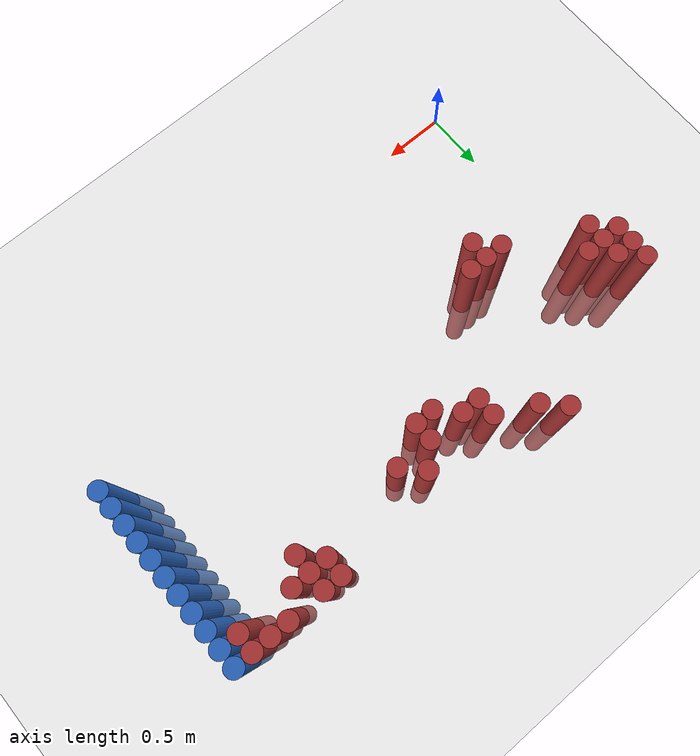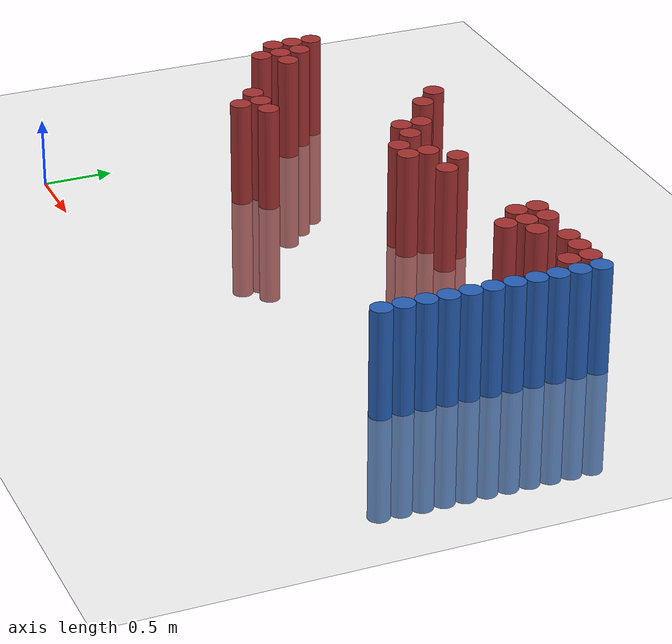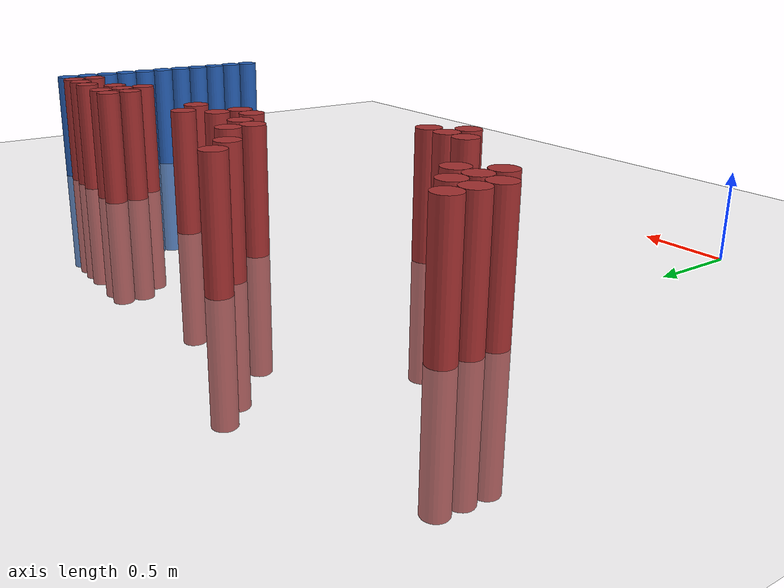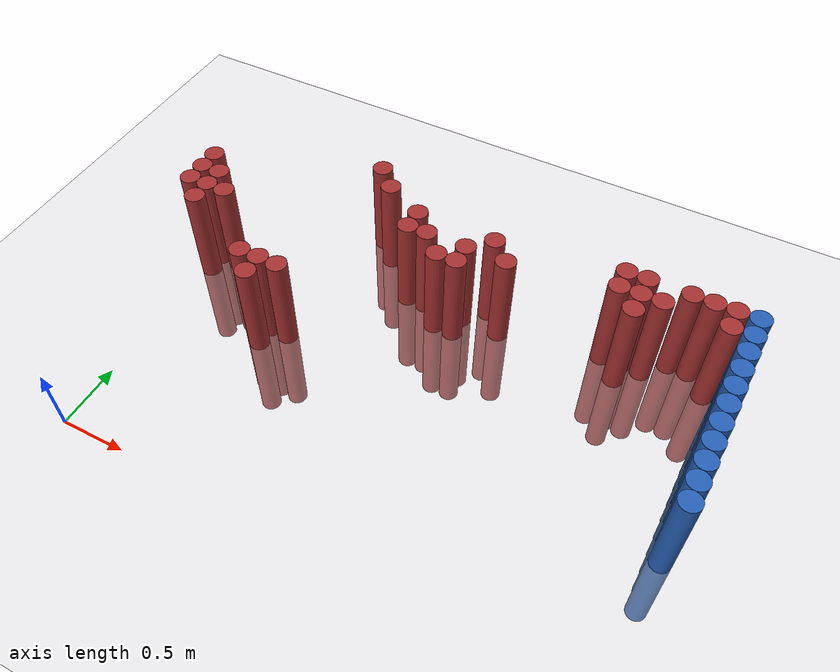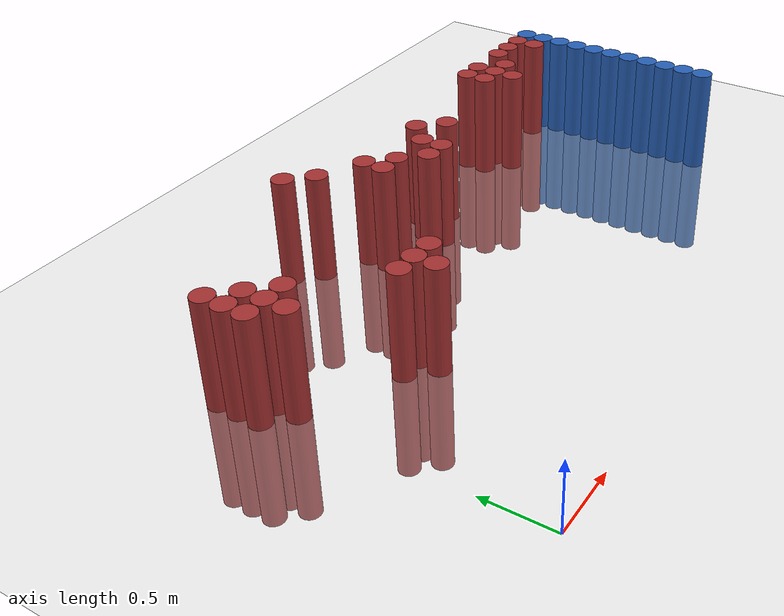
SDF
<sdf version="1.6">
 <world name="default">
  <model name="ground_plane">
   <static>1</static>
   <link name="link">
    <collision name="collision">
     <geometry><plane><normal>0 0 1</normal><size>100 100</size></plane></geometry>
     <surface><friction><ode><mu>100</mu><mu2>50</mu2></ode></friction></surface>
    </collision>
    <visual name="visual">
     <cast_shadows>0</cast_shadows>
     <geometry><plane><normal>0 0 1</normal><size>100 100</size></plane></geometry>
     <material>
      <script><uri>file://media/materials/scripts/gazebo.material</uri><name>Gazebo/Grey</name></script>
     </material>
    </visual>
   </link>
  </model>
  <model name="unit_cylinder_128">
   <static>1</static>
   <pose>3.925000 1.075000 0.000000 0.000000 0.000000 0.000000</pose>
   <link name="link">
    <inertial>
     <mass>1</mass>
     <inertia><ixx>0.145833</ixx><ixy>0</ixy><ixz>0</ixz><iyy>0.145833</iyy><iyz>0</iyz><izz>0.125</izz></inertia>
    </inertial>
    <collision name="collision">
     <geometry><cylinder><radius>0.075000</radius><length>1.5</length></cylinder></geometry>
    </collision>
    <visual name="visual">
     <geometry><cylinder><radius>0.075000</radius><length>1.5</length></cylinder></geometry>
     <material>
      <ambient>0.152000 0.379000 0.720000 1</ambient>
      <diffuse>0.152000 0.379000 0.720000 1</diffuse>
     </material>
     <material>
      <script><name>Gazebo/Grey</name><uri>file://media/materials/scripts/gazebo.material</uri></script>
     </material>
    </visual>
   </link>
  </model>
  <model name="unit_cylinder_130">
   <static>1</static>
   <pose>3.925000 1.225000 0.000000 0.000000 0.000000 0.000000</pose>
   <link name="link">
    <inertial>
     <mass>1</mass>
     <inertia><ixx>0.145833</ixx><ixy>0</ixy><ixz>0</ixz><iyy>0.145833</iyy><iyz>0</iyz><izz>0.125</izz></inertia>
    </inertial>
    <collision name="collision">
     <geometry><cylinder><radius>0.075000</radius><length>1.5</length></cylinder></geometry>
    </collision>
    <visual name="visual">
     <geometry><cylinder><radius>0.075000</radius><length>1.5</length></cylinder></geometry>
     <material>
      <ambient>0.152000 0.379000 0.720000 1</ambient>
      <diffuse>0.152000 0.379000 0.720000 1</diffuse>
     </material>
     <material>
      <script><name>Gazebo/Grey</name><uri>file://media/materials/scripts/gazebo.material</uri></script>
     </material>
    </visual>
   </link>
  </model>
  <model name="unit_cylinder_132">
   <static>1</static>
   <pose>3.925000 1.375000 0.000000 0.000000 0.000000 0.000000</pose>
   <link name="link">
    <inertial>
     <mass>1</mass>
     <inertia><ixx>0.145833</ixx><ixy>0</ixy><ixz>0</ixz><iyy>0.145833</iyy><iyz>0</iyz><izz>0.125</izz></inertia>
    </inertial>
    <collision name="collision">
     <geometry><cylinder><radius>0.075000</radius><length>1.5</length></cylinder></geometry>
    </collision>
    <visual name="visual">
     <geometry><cylinder><radius>0.075000</radius><length>1.5</length></cylinder></geometry>
     <material>
      <ambient>0.152000 0.379000 0.720000 1</ambient>
      <diffuse>0.152000 0.379000 0.720000 1</diffuse>
     </material>
     <material>
      <script><name>Gazebo/Grey</name><uri>file://media/materials/scripts/gazebo.material</uri></script>
     </material>
    </visual>
   </link>
  </model>
  <model name="unit_cylinder_134">
   <static>1</static>
   <pose>3.925000 1.525000 0.000000 0.000000 0.000000 0.000000</pose>
   <link name="link">
    <inertial>
     <mass>1</mass>
     <inertia><ixx>0.145833</ixx><ixy>0</ixy><ixz>0</ixz><iyy>0.145833</iyy><iyz>0</iyz><izz>0.125</izz></inertia>
    </inertial>
    <collision name="collision">
     <geometry><cylinder><radius>0.075000</radius><length>1.5</length></cylinder></geometry>
    </collision>
    <visual name="visual">
     <geometry><cylinder><radius>0.075000</radius><length>1.5</length></cylinder></geometry>
     <material>
      <ambient>0.152000 0.379000 0.720000 1</ambient>
      <diffuse>0.152000 0.379000 0.720000 1</diffuse>
     </material>
     <material>
      <script><name>Gazebo/Grey</name><uri>file://media/materials/scripts/gazebo.material</uri></script>
     </material>
    </visual>
   </link>
  </model>
  <model name="unit_cylinder_136">
   <static>1</static>
   <pose>3.925000 1.675000 0.000000 0.000000 0.000000 0.000000</pose>
   <link name="link">
    <inertial>
     <mass>1</mass>
     <inertia><ixx>0.145833</ixx><ixy>0</ixy><ixz>0</ixz><iyy>0.145833</iyy><iyz>0</iyz><izz>0.125</izz></inertia>
    </inertial>
    <collision name="collision">
     <geometry><cylinder><radius>0.075000</radius><length>1.5</length></cylinder></geometry>
    </collision>
    <visual name="visual">
     <geometry><cylinder><radius>0.075000</radius><length>1.5</length></cylinder></geometry>
     <material>
      <ambient>0.152000 0.379000 0.720000 1</ambient>
      <diffuse>0.152000 0.379000 0.720000 1</diffuse>
     </material>
     <material>
      <script><name>Gazebo/Grey</name><uri>file://media/materials/scripts/gazebo.material</uri></script>
     </material>
    </visual>
   </link>
  </model>
  <model name="unit_cylinder_138">
   <static>1</static>
   <pose>3.925000 1.825000 0.000000 0.000000 0.000000 0.000000</pose>
   <link name="link">
    <inertial>
     <mass>1</mass>
     <inertia><ixx>0.145833</ixx><ixy>0</ixy><ixz>0</ixz><iyy>0.145833</iyy><iyz>0</iyz><izz>0.125</izz></inertia>
    </inertial>
    <collision name="collision">
     <geometry><cylinder><radius>0.075000</radius><length>1.5</length></cylinder></geometry>
    </collision>
    <visual name="visual">
     <geometry><cylinder><radius>0.075000</radius><length>1.5</length></cylinder></geometry>
     <material>
      <ambient>0.152000 0.379000 0.720000 1</ambient>
      <diffuse>0.152000 0.379000 0.720000 1</diffuse>
     </material>
     <material>
      <script><name>Gazebo/Grey</name><uri>file://media/materials/scripts/gazebo.material</uri></script>
     </material>
    </visual>
   </link>
  </model>
  <model name="unit_cylinder_140">
   <static>1</static>
   <pose>3.925000 1.975000 0.000000 0.000000 0.000000 0.000000</pose>
   <link name="link">
    <inertial>
     <mass>1</mass>
     <inertia><ixx>0.145833</ixx><ixy>0</ixy><ixz>0</ixz><iyy>0.145833</iyy><iyz>0</iyz><izz>0.125</izz></inertia>
    </inertial>
    <collision name="collision">
     <geometry><cylinder><radius>0.075000</radius><length>1.5</length></cylinder></geometry>
    </collision>
    <visual name="visual">
     <geometry><cylinder><radius>0.075000</radius><length>1.5</length></cylinder></geometry>
     <material>
      <ambient>0.152000 0.379000 0.720000 1</ambient>
      <diffuse>0.152000 0.379000 0.720000 1</diffuse>
     </material>
     <material>
      <script><name>Gazebo/Grey</name><uri>file://media/materials/scripts/gazebo.material</uri></script>
     </material>
    </visual>
   </link>
  </model>
  <model name="unit_cylinder_142">
   <static>1</static>
   <pose>3.925000 2.125000 0.000000 0.000000 0.000000 0.000000</pose>
   <link name="link">
    <inertial>
     <mass>1</mass>
     <inertia><ixx>0.145833</ixx><ixy>0</ixy><ixz>0</ixz><iyy>0.145833</iyy><iyz>0</iyz><izz>0.125</izz></inertia>
    </inertial>
    <collision name="collision">
     <geometry><cylinder><radius>0.075000</radius><length>1.5</length></cylinder></geometry>
    </collision>
    <visual name="visual">
     <geometry><cylinder><radius>0.075000</radius><length>1.5</length></cylinder></geometry>
     <material>
      <ambient>0.152000 0.379000 0.720000 1</ambient>
      <diffuse>0.152000 0.379000 0.720000 1</diffuse>
     </material>
     <material>
      <script><name>Gazebo/Grey</name><uri>file://media/materials/scripts/gazebo.material</uri></script>
     </material>
    </visual>
   </link>
  </model>
  <model name="unit_cylinder_144">
   <static>1</static>
   <pose>3.925000 2.275000 0.000000 0.000000 0.000000 0.000000</pose>
   <link name="link">
    <inertial>
     <mass>1</mass>
     <inertia><ixx>0.145833</ixx><ixy>0</ixy><ixz>0</ixz><iyy>0.145833</iyy><iyz>0</iyz><izz>0.125</izz></inertia>
    </inertial>
    <collision name="collision">
     <geometry><cylinder><radius>0.075000</radius><length>1.5</length></cylinder></geometry>
    </collision>
    <visual name="visual">
     <geometry><cylinder><radius>0.075000</radius><length>1.5</length></cylinder></geometry>
     <material>
      <ambient>0.152000 0.379000 0.720000 1</ambient>
      <diffuse>0.152000 0.379000 0.720000 1</diffuse>
     </material>
     <material>
      <script><name>Gazebo/Grey</name><uri>file://media/materials/scripts/gazebo.material</uri></script>
     </material>
    </visual>
   </link>
  </model>
  <model name="unit_cylinder_146">
   <static>1</static>
   <pose>3.925000 2.425000 0.000000 0.000000 0.000000 0.000000</pose>
   <link name="link">
    <inertial>
     <mass>1</mass>
     <inertia><ixx>0.145833</ixx><ixy>0</ixy><ixz>0</ixz><iyy>0.145833</iyy><iyz>0</iyz><izz>0.125</izz></inertia>
    </inertial>
    <collision name="collision">
     <geometry><cylinder><radius>0.075000</radius><length>1.5</length></cylinder></geometry>
    </collision>
    <visual name="visual">
     <geometry><cylinder><radius>0.075000</radius><length>1.5</length></cylinder></geometry>
     <material>
      <ambient>0.152000 0.379000 0.720000 1</ambient>
      <diffuse>0.152000 0.379000 0.720000 1</diffuse>
     </material>
     <material>
      <script><name>Gazebo/Grey</name><uri>file://media/materials/scripts/gazebo.material</uri></script>
     </material>
    </visual>
   </link>
  </model>
  <model name="unit_cylinder_360">
   <static>1</static>
   <pose>-0.125000 1.825000 0.000000 0.000000 0.000000 0.000000</pose>
   <link name="link">
    <inertial>
     <mass>1</mass>
     <inertia><ixx>0.145833</ixx><ixy>0</ixy><ixz>0</ixz><iyy>0.145833</iyy><iyz>0</iyz><izz>0.125</izz></inertia>
    </inertial>
    <collision name="collision">
     <geometry><cylinder><radius>0.075000</radius><length>1.5</length></cylinder></geometry>
    </collision>
    <visual name="visual">
     <geometry><cylinder><radius>0.075000</radius><length>1.5</length></cylinder></geometry>
     <material>
      <ambient>0.648000 0.192000 0.192000 1</ambient>
      <diffuse>0.648000 0.192000 0.192000 1</diffuse>
     </material>
     <material>
      <script><name>Gazebo/Grey</name><uri>file://media/materials/scripts/gazebo.material</uri></script>
     </material>
    </visual>
   </link>
  </model>
  <model name="unit_cylinder_361">
   <static>1</static>
   <pose>-0.125000 1.975000 0.000000 0.000000 0.000000 0.000000</pose>
   <link name="link">
    <inertial>
     <mass>1</mass>
     <inertia><ixx>0.145833</ixx><ixy>0</ixy><ixz>0</ixz><iyy>0.145833</iyy><iyz>0</iyz><izz>0.125</izz></inertia>
    </inertial>
    <collision name="collision">
     <geometry><cylinder><radius>0.075000</radius><length>1.5</length></cylinder></geometry>
    </collision>
    <visual name="visual">
     <geometry><cylinder><radius>0.075000</radius><length>1.5</length></cylinder></geometry>
     <material>
      <ambient>0.648000 0.192000 0.192000 1</ambient>
      <diffuse>0.648000 0.192000 0.192000 1</diffuse>
     </material>
     <material>
      <script><name>Gazebo/Grey</name><uri>file://media/materials/scripts/gazebo.material</uri></script>
     </material>
    </visual>
   </link>
  </model>
  <model name="unit_cylinder_362">
   <static>1</static>
   <pose>-0.125000 2.125000 0.000000 0.000000 0.000000 0.000000</pose>
   <link name="link">
    <inertial>
     <mass>1</mass>
     <inertia><ixx>0.145833</ixx><ixy>0</ixy><ixz>0</ixz><iyy>0.145833</iyy><iyz>0</iyz><izz>0.125</izz></inertia>
    </inertial>
    <collision name="collision">
     <geometry><cylinder><radius>0.075000</radius><length>1.5</length></cylinder></geometry>
    </collision>
    <visual name="visual">
     <geometry><cylinder><radius>0.075000</radius><length>1.5</length></cylinder></geometry>
     <material>
      <ambient>0.648000 0.192000 0.192000 1</ambient>
      <diffuse>0.648000 0.192000 0.192000 1</diffuse>
     </material>
     <material>
      <script><name>Gazebo/Grey</name><uri>file://media/materials/scripts/gazebo.material</uri></script>
     </material>
    </visual>
   </link>
  </model>
  <model name="unit_cylinder_363">
   <static>1</static>
   <pose>0.025000 1.675000 0.000000 0.000000 0.000000 0.000000</pose>
   <link name="link">
    <inertial>
     <mass>1</mass>
     <inertia><ixx>0.145833</ixx><ixy>0</ixy><ixz>0</ixz><iyy>0.145833</iyy><iyz>0</iyz><izz>0.125</izz></inertia>
    </inertial>
    <collision name="collision">
     <geometry><cylinder><radius>0.075000</radius><length>1.5</length></cylinder></geometry>
    </collision>
    <visual name="visual">
     <geometry><cylinder><radius>0.075000</radius><length>1.5</length></cylinder></geometry>
     <material>
      <ambient>0.648000 0.192000 0.192000 1</ambient>
      <diffuse>0.648000 0.192000 0.192000 1</diffuse>
     </material>
     <material>
      <script><name>Gazebo/Grey</name><uri>file://media/materials/scripts/gazebo.material</uri></script>
     </material>
    </visual>
   </link>
  </model>
  <model name="unit_cylinder_364">
   <static>1</static>
   <pose>0.025000 1.825000 0.000000 0.000000 0.000000 0.000000</pose>
   <link name="link">
    <inertial>
     <mass>1</mass>
     <inertia><ixx>0.145833</ixx><ixy>0</ixy><ixz>0</ixz><iyy>0.145833</iyy><iyz>0</iyz><izz>0.125</izz></inertia>
    </inertial>
    <collision name="collision">
     <geometry><cylinder><radius>0.075000</radius><length>1.5</length></cylinder></geometry>
    </collision>
    <visual name="visual">
     <geometry><cylinder><radius>0.075000</radius><length>1.5</length></cylinder></geometry>
     <material>
      <ambient>0.648000 0.192000 0.192000 1</ambient>
      <diffuse>0.648000 0.192000 0.192000 1</diffuse>
     </material>
     <material>
      <script><name>Gazebo/Grey</name><uri>file://media/materials/scripts/gazebo.material</uri></script>
     </material>
    </visual>
   </link>
  </model>
  <model name="unit_cylinder_365">
   <static>1</static>
   <pose>0.025000 1.975000 0.000000 0.000000 0.000000 0.000000</pose>
   <link name="link">
    <inertial>
     <mass>1</mass>
     <inertia><ixx>0.145833</ixx><ixy>0</ixy><ixz>0</ixz><iyy>0.145833</iyy><iyz>0</iyz><izz>0.125</izz></inertia>
    </inertial>
    <collision name="collision">
     <geometry><cylinder><radius>0.075000</radius><length>1.5</length></cylinder></geometry>
    </collision>
    <visual name="visual">
     <geometry><cylinder><radius>0.075000</radius><length>1.5</length></cylinder></geometry>
     <material>
      <ambient>0.648000 0.192000 0.192000 1</ambient>
      <diffuse>0.648000 0.192000 0.192000 1</diffuse>
     </material>
     <material>
      <script><name>Gazebo/Grey</name><uri>file://media/materials/scripts/gazebo.material</uri></script>
     </material>
    </visual>
   </link>
  </model>
  <model name="unit_cylinder_366">
   <static>1</static>
   <pose>0.175000 1.825000 0.000000 0.000000 0.000000 0.000000</pose>
   <link name="link">
    <inertial>
     <mass>1</mass>
     <inertia><ixx>0.145833</ixx><ixy>0</ixy><ixz>0</ixz><iyy>0.145833</iyy><iyz>0</iyz><izz>0.125</izz></inertia>
    </inertial>
    <collision name="collision">
     <geometry><cylinder><radius>0.075000</radius><length>1.5</length></cylinder></geometry>
    </collision>
    <visual name="visual">
     <geometry><cylinder><radius>0.075000</radius><length>1.5</length></cylinder></geometry>
     <material>
      <ambient>0.648000 0.192000 0.192000 1</ambient>
      <diffuse>0.648000 0.192000 0.192000 1</diffuse>
     </material>
     <material>
      <script><name>Gazebo/Grey</name><uri>file://media/materials/scripts/gazebo.material</uri></script>
     </material>
    </visual>
   </link>
  </model>
  <model name="unit_cylinder_370">
   <static>1</static>
   <pose>0.625000 1.375000 0.000000 0.000000 0.000000 0.000000</pose>
   <link name="link">
    <inertial>
     <mass>1</mass>
     <inertia><ixx>0.145833</ixx><ixy>0</ixy><ixz>0</ixz><iyy>0.145833</iyy><iyz>0</iyz><izz>0.125</izz></inertia>
    </inertial>
    <collision name="collision">
     <geometry><cylinder><radius>0.075000</radius><length>1.5</length></cylinder></geometry>
    </collision>
    <visual name="visual">
     <geometry><cylinder><radius>0.075000</radius><length>1.5</length></cylinder></geometry>
     <material>
      <ambient>0.648000 0.192000 0.192000 1</ambient>
      <diffuse>0.648000 0.192000 0.192000 1</diffuse>
     </material>
     <material>
      <script><name>Gazebo/Grey</name><uri>file://media/materials/scripts/gazebo.material</uri></script>
     </material>
    </visual>
   </link>
  </model>
  <model name="unit_cylinder_372">
   <static>1</static>
   <pose>0.775000 1.225000 0.000000 0.000000 0.000000 0.000000</pose>
   <link name="link">
    <inertial>
     <mass>1</mass>
     <inertia><ixx>0.145833</ixx><ixy>0</ixy><ixz>0</ixz><iyy>0.145833</iyy><iyz>0</iyz><izz>0.125</izz></inertia>
    </inertial>
    <collision name="collision">
     <geometry><cylinder><radius>0.075000</radius><length>1.5</length></cylinder></geometry>
    </collision>
    <visual name="visual">
     <geometry><cylinder><radius>0.075000</radius><length>1.5</length></cylinder></geometry>
     <material>
      <ambient>0.648000 0.192000 0.192000 1</ambient>
      <diffuse>0.648000 0.192000 0.192000 1</diffuse>
     </material>
     <material>
      <script><name>Gazebo/Grey</name><uri>file://media/materials/scripts/gazebo.material</uri></script>
     </material>
    </visual>
   </link>
  </model>
  <model name="unit_cylinder_373">
   <static>1</static>
   <pose>0.775000 1.375000 0.000000 0.000000 0.000000 0.000000</pose>
   <link name="link">
    <inertial>
     <mass>1</mass>
     <inertia><ixx>0.145833</ixx><ixy>0</ixy><ixz>0</ixz><iyy>0.145833</iyy><iyz>0</iyz><izz>0.125</izz></inertia>
    </inertial>
    <collision name="collision">
     <geometry><cylinder><radius>0.075000</radius><length>1.5</length></cylinder></geometry>
    </collision>
    <visual name="visual">
     <geometry><cylinder><radius>0.075000</radius><length>1.5</length></cylinder></geometry>
     <material>
      <ambient>0.648000 0.192000 0.192000 1</ambient>
      <diffuse>0.648000 0.192000 0.192000 1</diffuse>
     </material>
     <material>
      <script><name>Gazebo/Grey</name><uri>file://media/materials/scripts/gazebo.material</uri></script>
     </material>
    </visual>
   </link>
  </model>
  <model name="unit_cylinder_376">
   <static>1</static>
   <pose>0.925000 1.375000 0.000000 0.000000 0.000000 0.000000</pose>
   <link name="link">
    <inertial>
     <mass>1</mass>
     <inertia><ixx>0.145833</ixx><ixy>0</ixy><ixz>0</ixz><iyy>0.145833</iyy><iyz>0</iyz><izz>0.125</izz></inertia>
    </inertial>
    <collision name="collision">
     <geometry><cylinder><radius>0.075000</radius><length>1.5</length></cylinder></geometry>
    </collision>
    <visual name="visual">
     <geometry><cylinder><radius>0.075000</radius><length>1.5</length></cylinder></geometry>
     <material>
      <ambient>0.648000 0.192000 0.192000 1</ambient>
      <diffuse>0.648000 0.192000 0.192000 1</diffuse>
     </material>
     <material>
      <script><name>Gazebo/Grey</name><uri>file://media/materials/scripts/gazebo.material</uri></script>
     </material>
    </visual>
   </link>
  </model>
  <model name="unit_cylinder_377">
   <static>1</static>
   <pose>1.075000 2.575000 0.000000 0.000000 0.000000 0.000000</pose>
   <link name="link">
    <inertial>
     <mass>1</mass>
     <inertia><ixx>0.145833</ixx><ixy>0</ixy><ixz>0</ixz><iyy>0.145833</iyy><iyz>0</iyz><izz>0.125</izz></inertia>
    </inertial>
    <collision name="collision">
     <geometry><cylinder><radius>0.075000</radius><length>1.5</length></cylinder></geometry>
    </collision>
    <visual name="visual">
     <geometry><cylinder><radius>0.075000</radius><length>1.5</length></cylinder></geometry>
     <material>
      <ambient>0.648000 0.192000 0.192000 1</ambient>
      <diffuse>0.648000 0.192000 0.192000 1</diffuse>
     </material>
     <material>
      <script><name>Gazebo/Grey</name><uri>file://media/materials/scripts/gazebo.material</uri></script>
     </material>
    </visual>
   </link>
  </model>
  <model name="unit_cylinder_380">
   <static>1</static>
   <pose>1.225000 2.425000 0.000000 0.000000 0.000000 0.000000</pose>
   <link name="link">
    <inertial>
     <mass>1</mass>
     <inertia><ixx>0.145833</ixx><ixy>0</ixy><ixz>0</ixz><iyy>0.145833</iyy><iyz>0</iyz><izz>0.125</izz></inertia>
    </inertial>
    <collision name="collision">
     <geometry><cylinder><radius>0.075000</radius><length>1.5</length></cylinder></geometry>
    </collision>
    <visual name="visual">
     <geometry><cylinder><radius>0.075000</radius><length>1.5</length></cylinder></geometry>
     <material>
      <ambient>0.648000 0.192000 0.192000 1</ambient>
      <diffuse>0.648000 0.192000 0.192000 1</diffuse>
     </material>
     <material>
      <script><name>Gazebo/Grey</name><uri>file://media/materials/scripts/gazebo.material</uri></script>
     </material>
    </visual>
   </link>
  </model>
  <model name="unit_cylinder_394">
   <static>1</static>
   <pose>1.525000 2.125000 0.000000 0.000000 0.000000 0.000000</pose>
   <link name="link">
    <inertial>
     <mass>1</mass>
     <inertia><ixx>0.145833</ixx><ixy>0</ixy><ixz>0</ixz><iyy>0.145833</iyy><iyz>0</iyz><izz>0.125</izz></inertia>
    </inertial>
    <collision name="collision">
     <geometry><cylinder><radius>0.075000</radius><length>1.5</length></cylinder></geometry>
    </collision>
    <visual name="visual">
     <geometry><cylinder><radius>0.075000</radius><length>1.5</length></cylinder></geometry>
     <material>
      <ambient>0.648000 0.192000 0.192000 1</ambient>
      <diffuse>0.648000 0.192000 0.192000 1</diffuse>
     </material>
     <material>
      <script><name>Gazebo/Grey</name><uri>file://media/materials/scripts/gazebo.material</uri></script>
     </material>
    </visual>
   </link>
  </model>
  <model name="unit_cylinder_395">
   <static>1</static>
   <pose>1.525000 2.275000 0.000000 0.000000 0.000000 0.000000</pose>
   <link name="link">
    <inertial>
     <mass>1</mass>
     <inertia><ixx>0.145833</ixx><ixy>0</ixy><ixz>0</ixz><iyy>0.145833</iyy><iyz>0</iyz><izz>0.125</izz></inertia>
    </inertial>
    <collision name="collision">
     <geometry><cylinder><radius>0.075000</radius><length>1.5</length></cylinder></geometry>
    </collision>
    <visual name="visual">
     <geometry><cylinder><radius>0.075000</radius><length>1.5</length></cylinder></geometry>
     <material>
      <ambient>0.648000 0.192000 0.192000 1</ambient>
      <diffuse>0.648000 0.192000 0.192000 1</diffuse>
     </material>
     <material>
      <script><name>Gazebo/Grey</name><uri>file://media/materials/scripts/gazebo.material</uri></script>
     </material>
    </visual>
   </link>
  </model>
  <model name="unit_cylinder_397">
   <static>1</static>
   <pose>1.675000 2.125000 0.000000 0.000000 0.000000 0.000000</pose>
   <link name="link">
    <inertial>
     <mass>1</mass>
     <inertia><ixx>0.145833</ixx><ixy>0</ixy><ixz>0</ixz><iyy>0.145833</iyy><iyz>0</iyz><izz>0.125</izz></inertia>
    </inertial>
    <collision name="collision">
     <geometry><cylinder><radius>0.075000</radius><length>1.5</length></cylinder></geometry>
    </collision>
    <visual name="visual">
     <geometry><cylinder><radius>0.075000</radius><length>1.5</length></cylinder></geometry>
     <material>
      <ambient>0.648000 0.192000 0.192000 1</ambient>
      <diffuse>0.648000 0.192000 0.192000 1</diffuse>
     </material>
     <material>
      <script><name>Gazebo/Grey</name><uri>file://media/materials/scripts/gazebo.material</uri></script>
     </material>
    </visual>
   </link>
  </model>
  <model name="unit_cylinder_401">
   <static>1</static>
   <pose>1.825000 1.975000 0.000000 0.000000 0.000000 0.000000</pose>
   <link name="link">
    <inertial>
     <mass>1</mass>
     <inertia><ixx>0.145833</ixx><ixy>0</ixy><ixz>0</ixz><iyy>0.145833</iyy><iyz>0</iyz><izz>0.125</izz></inertia>
    </inertial>
    <collision name="collision">
     <geometry><cylinder><radius>0.075000</radius><length>1.5</length></cylinder></geometry>
    </collision>
    <visual name="visual">
     <geometry><cylinder><radius>0.075000</radius><length>1.5</length></cylinder></geometry>
     <material>
      <ambient>0.648000 0.192000 0.192000 1</ambient>
      <diffuse>0.648000 0.192000 0.192000 1</diffuse>
     </material>
     <material>
      <script><name>Gazebo/Grey</name><uri>file://media/materials/scripts/gazebo.material</uri></script>
     </material>
    </visual>
   </link>
  </model>
  <model name="unit_cylinder_406">
   <static>1</static>
   <pose>1.975000 1.975000 0.000000 0.000000 0.000000 0.000000</pose>
   <link name="link">
    <inertial>
     <mass>1</mass>
     <inertia><ixx>0.145833</ixx><ixy>0</ixy><ixz>0</ixz><iyy>0.145833</iyy><iyz>0</iyz><izz>0.125</izz></inertia>
    </inertial>
    <collision name="collision">
     <geometry><cylinder><radius>0.075000</radius><length>1.5</length></cylinder></geometry>
    </collision>
    <visual name="visual">
     <geometry><cylinder><radius>0.075000</radius><length>1.5</length></cylinder></geometry>
     <material>
      <ambient>0.648000 0.192000 0.192000 1</ambient>
      <diffuse>0.648000 0.192000 0.192000 1</diffuse>
     </material>
     <material>
      <script><name>Gazebo/Grey</name><uri>file://media/materials/scripts/gazebo.material</uri></script>
     </material>
    </visual>
   </link>
  </model>
  <model name="unit_cylinder_407">
   <static>1</static>
   <pose>1.975000 2.125000 0.000000 0.000000 0.000000 0.000000</pose>
   <link name="link">
    <inertial>
     <mass>1</mass>
     <inertia><ixx>0.145833</ixx><ixy>0</ixy><ixz>0</ixz><iyy>0.145833</iyy><iyz>0</iyz><izz>0.125</izz></inertia>
    </inertial>
    <collision name="collision">
     <geometry><cylinder><radius>0.075000</radius><length>1.5</length></cylinder></geometry>
    </collision>
    <visual name="visual">
     <geometry><cylinder><radius>0.075000</radius><length>1.5</length></cylinder></geometry>
     <material>
      <ambient>0.648000 0.192000 0.192000 1</ambient>
      <diffuse>0.648000 0.192000 0.192000 1</diffuse>
     </material>
     <material>
      <script><name>Gazebo/Grey</name><uri>file://media/materials/scripts/gazebo.material</uri></script>
     </material>
    </visual>
   </link>
  </model>
  <model name="unit_cylinder_411">
   <static>1</static>
   <pose>2.125000 2.275000 0.000000 0.000000 0.000000 0.000000</pose>
   <link name="link">
    <inertial>
     <mass>1</mass>
     <inertia><ixx>0.145833</ixx><ixy>0</ixy><ixz>0</ixz><iyy>0.145833</iyy><iyz>0</iyz><izz>0.125</izz></inertia>
    </inertial>
    <collision name="collision">
     <geometry><cylinder><radius>0.075000</radius><length>1.5</length></cylinder></geometry>
    </collision>
    <visual name="visual">
     <geometry><cylinder><radius>0.075000</radius><length>1.5</length></cylinder></geometry>
     <material>
      <ambient>0.648000 0.192000 0.192000 1</ambient>
      <diffuse>0.648000 0.192000 0.192000 1</diffuse>
     </material>
     <material>
      <script><name>Gazebo/Grey</name><uri>file://media/materials/scripts/gazebo.material</uri></script>
     </material>
    </visual>
   </link>
  </model>
  <model name="unit_cylinder_412">
   <static>1</static>
   <pose>2.275000 2.125000 0.000000 0.000000 0.000000 0.000000</pose>
   <link name="link">
    <inertial>
     <mass>1</mass>
     <inertia><ixx>0.145833</ixx><ixy>0</ixy><ixz>0</ixz><iyy>0.145833</iyy><iyz>0</iyz><izz>0.125</izz></inertia>
    </inertial>
    <collision name="collision">
     <geometry><cylinder><radius>0.075000</radius><length>1.5</length></cylinder></geometry>
    </collision>
    <visual name="visual">
     <geometry><cylinder><radius>0.075000</radius><length>1.5</length></cylinder></geometry>
     <material>
      <ambient>0.648000 0.192000 0.192000 1</ambient>
      <diffuse>0.648000 0.192000 0.192000 1</diffuse>
     </material>
     <material>
      <script><name>Gazebo/Grey</name><uri>file://media/materials/scripts/gazebo.material</uri></script>
     </material>
    </visual>
   </link>
  </model>
  <model name="unit_cylinder_435">
   <static>1</static>
   <pose>3.025000 2.275000 0.000000 0.000000 0.000000 0.000000</pose>
   <link name="link">
    <inertial>
     <mass>1</mass>
     <inertia><ixx>0.145833</ixx><ixy>0</ixy><ixz>0</ixz><iyy>0.145833</iyy><iyz>0</iyz><izz>0.125</izz></inertia>
    </inertial>
    <collision name="collision">
     <geometry><cylinder><radius>0.075000</radius><length>1.5</length></cylinder></geometry>
    </collision>
    <visual name="visual">
     <geometry><cylinder><radius>0.075000</radius><length>1.5</length></cylinder></geometry>
     <material>
      <ambient>0.648000 0.192000 0.192000 1</ambient>
      <diffuse>0.648000 0.192000 0.192000 1</diffuse>
     </material>
     <material>
      <script><name>Gazebo/Grey</name><uri>file://media/materials/scripts/gazebo.material</uri></script>
     </material>
    </visual>
   </link>
  </model>
  <model name="unit_cylinder_436">
   <static>1</static>
   <pose>3.025000 2.425000 0.000000 0.000000 0.000000 0.000000</pose>
   <link name="link">
    <inertial>
     <mass>1</mass>
     <inertia><ixx>0.145833</ixx><ixy>0</ixy><ixz>0</ixz><iyy>0.145833</iyy><iyz>0</iyz><izz>0.125</izz></inertia>
    </inertial>
    <collision name="collision">
     <geometry><cylinder><radius>0.075000</radius><length>1.5</length></cylinder></geometry>
    </collision>
    <visual name="visual">
     <geometry><cylinder><radius>0.075000</radius><length>1.5</length></cylinder></geometry>
     <material>
      <ambient>0.648000 0.192000 0.192000 1</ambient>
      <diffuse>0.648000 0.192000 0.192000 1</diffuse>
     </material>
     <material>
      <script><name>Gazebo/Grey</name><uri>file://media/materials/scripts/gazebo.material</uri></script>
     </material>
    </visual>
   </link>
  </model>
  <model name="unit_cylinder_438">
   <static>1</static>
   <pose>3.175000 2.125000 0.000000 0.000000 0.000000 0.000000</pose>
   <link name="link">
    <inertial>
     <mass>1</mass>
     <inertia><ixx>0.145833</ixx><ixy>0</ixy><ixz>0</ixz><iyy>0.145833</iyy><iyz>0</iyz><izz>0.125</izz></inertia>
    </inertial>
    <collision name="collision">
     <geometry><cylinder><radius>0.075000</radius><length>1.5</length></cylinder></geometry>
    </collision>
    <visual name="visual">
     <geometry><cylinder><radius>0.075000</radius><length>1.5</length></cylinder></geometry>
     <material>
      <ambient>0.648000 0.192000 0.192000 1</ambient>
      <diffuse>0.648000 0.192000 0.192000 1</diffuse>
     </material>
     <material>
      <script><name>Gazebo/Grey</name><uri>file://media/materials/scripts/gazebo.material</uri></script>
     </material>
    </visual>
   </link>
  </model>
  <model name="unit_cylinder_439">
   <static>1</static>
   <pose>3.175000 2.275000 0.000000 0.000000 0.000000 0.000000</pose>
   <link name="link">
    <inertial>
     <mass>1</mass>
     <inertia><ixx>0.145833</ixx><ixy>0</ixy><ixz>0</ixz><iyy>0.145833</iyy><iyz>0</iyz><izz>0.125</izz></inertia>
    </inertial>
    <collision name="collision">
     <geometry><cylinder><radius>0.075000</radius><length>1.5</length></cylinder></geometry>
    </collision>
    <visual name="visual">
     <geometry><cylinder><radius>0.075000</radius><length>1.5</length></cylinder></geometry>
     <material>
      <ambient>0.648000 0.192000 0.192000 1</ambient>
      <diffuse>0.648000 0.192000 0.192000 1</diffuse>
     </material>
     <material>
      <script><name>Gazebo/Grey</name><uri>file://media/materials/scripts/gazebo.material</uri></script>
     </material>
    </visual>
   </link>
  </model>
  <model name="unit_cylinder_440">
   <static>1</static>
   <pose>3.175000 2.425000 0.000000 0.000000 0.000000 0.000000</pose>
   <link name="link">
    <inertial>
     <mass>1</mass>
     <inertia><ixx>0.145833</ixx><ixy>0</ixy><ixz>0</ixz><iyy>0.145833</iyy><iyz>0</iyz><izz>0.125</izz></inertia>
    </inertial>
    <collision name="collision">
     <geometry><cylinder><radius>0.075000</radius><length>1.5</length></cylinder></geometry>
    </collision>
    <visual name="visual">
     <geometry><cylinder><radius>0.075000</radius><length>1.5</length></cylinder></geometry>
     <material>
      <ambient>0.648000 0.192000 0.192000 1</ambient>
      <diffuse>0.648000 0.192000 0.192000 1</diffuse>
     </material>
     <material>
      <script><name>Gazebo/Grey</name><uri>file://media/materials/scripts/gazebo.material</uri></script>
     </material>
    </visual>
   </link>
  </model>
  <model name="unit_cylinder_446">
   <static>1</static>
   <pose>3.325000 2.275000 0.000000 0.000000 0.000000 0.000000</pose>
   <link name="link">
    <inertial>
     <mass>1</mass>
     <inertia><ixx>0.145833</ixx><ixy>0</ixy><ixz>0</ixz><iyy>0.145833</iyy><iyz>0</iyz><izz>0.125</izz></inertia>
    </inertial>
    <collision name="collision">
     <geometry><cylinder><radius>0.075000</radius><length>1.5</length></cylinder></geometry>
    </collision>
    <visual name="visual">
     <geometry><cylinder><radius>0.075000</radius><length>1.5</length></cylinder></geometry>
     <material>
      <ambient>0.648000 0.192000 0.192000 1</ambient>
      <diffuse>0.648000 0.192000 0.192000 1</diffuse>
     </material>
     <material>
      <script><name>Gazebo/Grey</name><uri>file://media/materials/scripts/gazebo.material</uri></script>
     </material>
    </visual>
   </link>
  </model>
  <model name="unit_cylinder_451">
   <static>1</static>
   <pose>3.475000 2.425000 0.000000 0.000000 0.000000 0.000000</pose>
   <link name="link">
    <inertial>
     <mass>1</mass>
     <inertia><ixx>0.145833</ixx><ixy>0</ixy><ixz>0</ixz><iyy>0.145833</iyy><iyz>0</iyz><izz>0.125</izz></inertia>
    </inertial>
    <collision name="collision">
     <geometry><cylinder><radius>0.075000</radius><length>1.5</length></cylinder></geometry>
    </collision>
    <visual name="visual">
     <geometry><cylinder><radius>0.075000</radius><length>1.5</length></cylinder></geometry>
     <material>
      <ambient>0.648000 0.192000 0.192000 1</ambient>
      <diffuse>0.648000 0.192000 0.192000 1</diffuse>
     </material>
     <material>
      <script><name>Gazebo/Grey</name><uri>file://media/materials/scripts/gazebo.material</uri></script>
     </material>
    </visual>
   </link>
  </model>
  <model name="unit_cylinder_452">
   <static>1</static>
   <pose>3.625000 2.425000 0.000000 0.000000 0.000000 0.000000</pose>
   <link name="link">
    <inertial>
     <mass>1</mass>
     <inertia><ixx>0.145833</ixx><ixy>0</ixy><ixz>0</ixz><iyy>0.145833</iyy><iyz>0</iyz><izz>0.125</izz></inertia>
    </inertial>
    <collision name="collision">
     <geometry><cylinder><radius>0.075000</radius><length>1.5</length></cylinder></geometry>
    </collision>
    <visual name="visual">
     <geometry><cylinder><radius>0.075000</radius><length>1.5</length></cylinder></geometry>
     <material>
      <ambient>0.648000 0.192000 0.192000 1</ambient>
      <diffuse>0.648000 0.192000 0.192000 1</diffuse>
     </material>
     <material>
      <script><name>Gazebo/Grey</name><uri>file://media/materials/scripts/gazebo.material</uri></script>
     </material>
    </visual>
   </link>
  </model>
  <model name="unit_cylinder_463">
   <static>1</static>
   <pose>3.775000 2.275000 0.000000 0.000000 0.000000 0.000000</pose>
   <link name="link">
    <inertial>
     <mass>1</mass>
     <inertia><ixx>0.145833</ixx><ixy>0</ixy><ixz>0</ixz><iyy>0.145833</iyy><iyz>0</iyz><izz>0.125</izz></inertia>
    </inertial>
    <collision name="collision">
     <geometry><cylinder><radius>0.075000</radius><length>1.5</length></cylinder></geometry>
    </collision>
    <visual name="visual">
     <geometry><cylinder><radius>0.075000</radius><length>1.5</length></cylinder></geometry>
     <material>
      <ambient>0.648000 0.192000 0.192000 1</ambient>
      <diffuse>0.648000 0.192000 0.192000 1</diffuse>
     </material>
     <material>
      <script><name>Gazebo/Grey</name><uri>file://media/materials/scripts/gazebo.material</uri></script>
     </material>
    </visual>
   </link>
  </model>
  <model name="unit_cylinder_464">
   <static>1</static>
   <pose>3.775000 2.425000 0.000000 0.000000 0.000000 0.000000</pose>
   <link name="link">
    <inertial>
     <mass>1</mass>
     <inertia><ixx>0.145833</ixx><ixy>0</ixy><ixz>0</ixz><iyy>0.145833</iyy><iyz>0</iyz><izz>0.125</izz></inertia>
    </inertial>
    <collision name="collision">
     <geometry><cylinder><radius>0.075000</radius><length>1.5</length></cylinder></geometry>
    </collision>
    <visual name="visual">
     <geometry><cylinder><radius>0.075000</radius><length>1.5</length></cylinder></geometry>
     <material>
      <ambient>0.648000 0.192000 0.192000 1</ambient>
      <diffuse>0.648000 0.192000 0.192000 1</diffuse>
     </material>
     <material>
      <script><name>Gazebo/Grey</name><uri>file://media/materials/scripts/gazebo.material</uri></script>
     </material>
    </visual>
   </link>
  </model>
  <model name="unit_cylinder_492">
   <static>1</static>
   <pose>3.925000 0.925000 0.000000 0.000000 0.000000 0.000000</pose>
   <link name="link">
    <inertial>
     <mass>1</mass>
     <inertia><ixx>0.145833</ixx><ixy>0</ixy><ixz>0</ixz><iyy>0.145833</iyy><iyz>0</iyz><izz>0.125</izz></inertia>
    </inertial>
    <collision name="collision">
     <geometry><cylinder><radius>0.075000</radius><length>1.5</length></cylinder></geometry>
    </collision>
    <visual name="visual">
     <geometry><cylinder><radius>0.075000</radius><length>1.5</length></cylinder></geometry>
     <material>
      <ambient>0.152000 0.379000 0.720000 1</ambient>
      <diffuse>0.152000 0.379000 0.720000 1</diffuse>
     </material>
     <material>
      <script><name>Gazebo/Grey</name><uri>file://media/materials/scripts/gazebo.material</uri></script>
     </material>
    </visual>
   </link>
  </model>
  <model name="unit_cylinder_493">
   <static>1</static>
   <pose>3.925000 1.075000 0.000000 0.000000 0.000000 0.000000</pose>
   <link name="link">
    <inertial>
     <mass>1</mass>
     <inertia><ixx>0.145833</ixx><ixy>0</ixy><ixz>0</ixz><iyy>0.145833</iyy><iyz>0</iyz><izz>0.125</izz></inertia>
    </inertial>
    <collision name="collision">
     <geometry><cylinder><radius>0.075000</radius><length>1.5</length></cylinder></geometry>
    </collision>
    <visual name="visual">
     <geometry><cylinder><radius>0.075000</radius><length>1.5</length></cylinder></geometry>
     <material>
      <ambient>0.152000 0.379000 0.720000 1</ambient>
      <diffuse>0.152000 0.379000 0.720000 1</diffuse>
     </material>
     <material>
      <script><name>Gazebo/Grey</name><uri>file://media/materials/scripts/gazebo.material</uri></script>
     </material>
    </visual>
   </link>
  </model>
  <model name="unit_cylinder_494">
   <static>1</static>
   <pose>3.925000 1.225000 0.000000 0.000000 0.000000 0.000000</pose>
   <link name="link">
    <inertial>
     <mass>1</mass>
     <inertia><ixx>0.145833</ixx><ixy>0</ixy><ixz>0</ixz><iyy>0.145833</iyy><iyz>0</iyz><izz>0.125</izz></inertia>
    </inertial>
    <collision name="collision">
     <geometry><cylinder><radius>0.075000</radius><length>1.5</length></cylinder></geometry>
    </collision>
    <visual name="visual">
     <geometry><cylinder><radius>0.075000</radius><length>1.5</length></cylinder></geometry>
     <material>
      <ambient>0.152000 0.379000 0.720000 1</ambient>
      <diffuse>0.152000 0.379000 0.720000 1</diffuse>
     </material>
     <material>
      <script><name>Gazebo/Grey</name><uri>file://media/materials/scripts/gazebo.material</uri></script>
     </material>
    </visual>
   </link>
  </model>
  <model name="unit_cylinder_495">
   <static>1</static>
   <pose>3.925000 1.375000 0.000000 0.000000 0.000000 0.000000</pose>
   <link name="link">
    <inertial>
     <mass>1</mass>
     <inertia><ixx>0.145833</ixx><ixy>0</ixy><ixz>0</ixz><iyy>0.145833</iyy><iyz>0</iyz><izz>0.125</izz></inertia>
    </inertial>
    <collision name="collision">
     <geometry><cylinder><radius>0.075000</radius><length>1.5</length></cylinder></geometry>
    </collision>
    <visual name="visual">
     <geometry><cylinder><radius>0.075000</radius><length>1.5</length></cylinder></geometry>
     <material>
      <ambient>0.152000 0.379000 0.720000 1</ambient>
      <diffuse>0.152000 0.379000 0.720000 1</diffuse>
     </material>
     <material>
      <script><name>Gazebo/Grey</name><uri>file://media/materials/scripts/gazebo.material</uri></script>
     </material>
    </visual>
   </link>
  </model>
  <model name="unit_cylinder_496">
   <static>1</static>
   <pose>3.925000 1.525000 0.000000 0.000000 0.000000 0.000000</pose>
   <link name="link">
    <inertial>
     <mass>1</mass>
     <inertia><ixx>0.145833</ixx><ixy>0</ixy><ixz>0</ixz><iyy>0.145833</iyy><iyz>0</iyz><izz>0.125</izz></inertia>
    </inertial>
    <collision name="collision">
     <geometry><cylinder><radius>0.075000</radius><length>1.5</length></cylinder></geometry>
    </collision>
    <visual name="visual">
     <geometry><cylinder><radius>0.075000</radius><length>1.5</length></cylinder></geometry>
     <material>
      <ambient>0.152000 0.379000 0.720000 1</ambient>
      <diffuse>0.152000 0.379000 0.720000 1</diffuse>
     </material>
     <material>
      <script><name>Gazebo/Grey</name><uri>file://media/materials/scripts/gazebo.material</uri></script>
     </material>
    </visual>
   </link>
  </model>
  <model name="unit_cylinder_497">
   <static>1</static>
   <pose>3.925000 1.675000 0.000000 0.000000 0.000000 0.000000</pose>
   <link name="link">
    <inertial>
     <mass>1</mass>
     <inertia><ixx>0.145833</ixx><ixy>0</ixy><ixz>0</ixz><iyy>0.145833</iyy><iyz>0</iyz><izz>0.125</izz></inertia>
    </inertial>
    <collision name="collision">
     <geometry><cylinder><radius>0.075000</radius><length>1.5</length></cylinder></geometry>
    </collision>
    <visual name="visual">
     <geometry><cylinder><radius>0.075000</radius><length>1.5</length></cylinder></geometry>
     <material>
      <ambient>0.152000 0.379000 0.720000 1</ambient>
      <diffuse>0.152000 0.379000 0.720000 1</diffuse>
     </material>
     <material>
      <script><name>Gazebo/Grey</name><uri>file://media/materials/scripts/gazebo.material</uri></script>
     </material>
    </visual>
   </link>
  </model>
  <model name="unit_cylinder_498">
   <static>1</static>
   <pose>3.925000 1.825000 0.000000 0.000000 0.000000 0.000000</pose>
   <link name="link">
    <inertial>
     <mass>1</mass>
     <inertia><ixx>0.145833</ixx><ixy>0</ixy><ixz>0</ixz><iyy>0.145833</iyy><iyz>0</iyz><izz>0.125</izz></inertia>
    </inertial>
    <collision name="collision">
     <geometry><cylinder><radius>0.075000</radius><length>1.5</length></cylinder></geometry>
    </collision>
    <visual name="visual">
     <geometry><cylinder><radius>0.075000</radius><length>1.5</length></cylinder></geometry>
     <material>
      <ambient>0.152000 0.379000 0.720000 1</ambient>
      <diffuse>0.152000 0.379000 0.720000 1</diffuse>
     </material>
     <material>
      <script><name>Gazebo/Grey</name><uri>file://media/materials/scripts/gazebo.material</uri></script>
     </material>
    </visual>
   </link>
  </model>
  <model name="unit_cylinder_499">
   <static>1</static>
   <pose>3.925000 1.975000 0.000000 0.000000 0.000000 0.000000</pose>
   <link name="link">
    <inertial>
     <mass>1</mass>
     <inertia><ixx>0.145833</ixx><ixy>0</ixy><ixz>0</ixz><iyy>0.145833</iyy><iyz>0</iyz><izz>0.125</izz></inertia>
    </inertial>
    <collision name="collision">
     <geometry><cylinder><radius>0.075000</radius><length>1.5</length></cylinder></geometry>
    </collision>
    <visual name="visual">
     <geometry><cylinder><radius>0.075000</radius><length>1.5</length></cylinder></geometry>
     <material>
      <ambient>0.152000 0.379000 0.720000 1</ambient>
      <diffuse>0.152000 0.379000 0.720000 1</diffuse>
     </material>
     <material>
      <script><name>Gazebo/Grey</name><uri>file://media/materials/scripts/gazebo.material</uri></script>
     </material>
    </visual>
   </link>
  </model>
  <model name="unit_cylinder_500">
   <static>1</static>
   <pose>3.925000 2.125000 0.000000 0.000000 0.000000 0.000000</pose>
   <link name="link">
    <inertial>
     <mass>1</mass>
     <inertia><ixx>0.145833</ixx><ixy>0</ixy><ixz>0</ixz><iyy>0.145833</iyy><iyz>0</iyz><izz>0.125</izz></inertia>
    </inertial>
    <collision name="collision">
     <geometry><cylinder><radius>0.075000</radius><length>1.5</length></cylinder></geometry>
    </collision>
    <visual name="visual">
     <geometry><cylinder><radius>0.075000</radius><length>1.5</length></cylinder></geometry>
     <material>
      <ambient>0.152000 0.379000 0.720000 1</ambient>
      <diffuse>0.152000 0.379000 0.720000 1</diffuse>
     </material>
     <material>
      <script><name>Gazebo/Grey</name><uri>file://media/materials/scripts/gazebo.material</uri></script>
     </material>
    </visual>
   </link>
  </model>
  <model name="unit_cylinder_501">
   <static>1</static>
   <pose>3.925000 2.275000 0.000000 0.000000 0.000000 0.000000</pose>
   <link name="link">
    <inertial>
     <mass>1</mass>
     <inertia><ixx>0.145833</ixx><ixy>0</ixy><ixz>0</ixz><iyy>0.145833</iyy><iyz>0</iyz><izz>0.125</izz></inertia>
    </inertial>
    <collision name="collision">
     <geometry><cylinder><radius>0.075000</radius><length>1.5</length></cylinder></geometry>
    </collision>
    <visual name="visual">
     <geometry><cylinder><radius>0.075000</radius><length>1.5</length></cylinder></geometry>
     <material>
      <ambient>0.152000 0.379000 0.720000 1</ambient>
      <diffuse>0.152000 0.379000 0.720000 1</diffuse>
     </material>
     <material>
      <script><name>Gazebo/Grey</name><uri>file://media/materials/scripts/gazebo.material</uri></script>
     </material>
    </visual>
   </link>
  </model>
  <model name="unit_cylinder_502">
   <static>1</static>
   <pose>3.925000 2.425000 0.000000 0.000000 0.000000 0.000000</pose>
   <link name="link">
    <inertial>
     <mass>1</mass>
     <inertia><ixx>0.145833</ixx><ixy>0</ixy><ixz>0</ixz><iyy>0.145833</iyy><iyz>0</iyz><izz>0.125</izz></inertia>
    </inertial>
    <collision name="collision">
     <geometry><cylinder><radius>0.075000</radius><length>1.5</length></cylinder></geometry>
    </collision>
    <visual name="visual">
     <geometry><cylinder><radius>0.075000</radius><length>1.5</length></cylinder></geometry>
     <material>
      <ambient>0.152000 0.379000 0.720000 1</ambient>
      <diffuse>0.152000 0.379000 0.720000 1</diffuse>
     </material>
     <material>
      <script><name>Gazebo/Grey</name><uri>file://media/materials/scripts/gazebo.material</uri></script>
     </material>
    </visual>
   </link>
  </model>
 </world>
</sdf>
